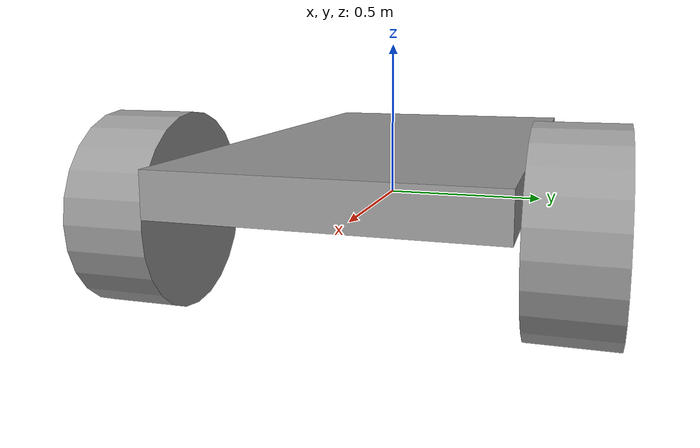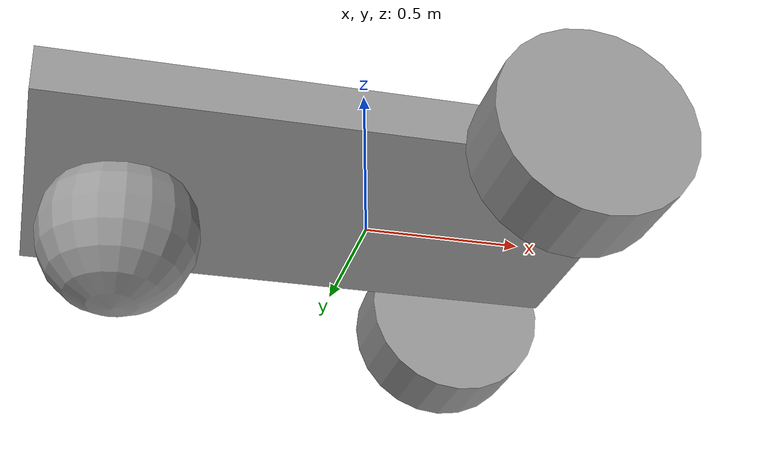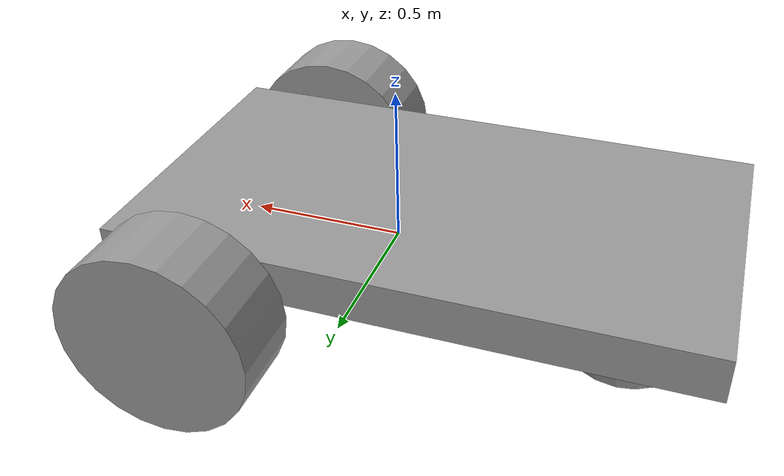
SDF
<?xml version='1.0'?>
<sdf version='1.6'>
  <model name='sernew'>
    <link name='link_0'>
      <inertial>
        <mass>0.25457</mass>
        <inertia>
          <ixx>0.0215985</ixx>
          <ixy>0</ixy>
          <ixz>0</ixz>
          <iyy>0.0705872</iyy>
          <iyz>0</iyz>
          <izz>0.091353</izz>
        </inertia>
        <pose frame=''>0 0 0 0 -0 0</pose>
      </inertial>
      <pose frame=''>-0.150504 -0.010345 0.100406 0 -0 0</pose>
      <gravity>1</gravity>
      <self_collide>0</self_collide>
      <kinematic>0</kinematic>
      <enable_wind>0</enable_wind>
      <visual name='visual'>
        <pose frame=''>0 0 0 0 -0 0</pose>
        <geometry>
          <box>
            <size>1.81872 0.999245 0.140088</size>
          </box>
        </geometry>
        <material>
          <lighting>1</lighting>
          <script>
            <uri>file://media/materials/scripts/gazebo.material</uri>
            <name>Gazebo/Grey</name>
          </script>
          <shader type='pixel'>
            <normal_map>__default__</normal_map>
          </shader>
          <emissive>0 0 0 1</emissive>
          <ambient>0.3 0.3 0.3 1</ambient>
          <diffuse>0.7 0.7 0.7 1</diffuse>
          <specular>0.01 0.01 0.01 1</specular>
        </material>
        <transparency>0</transparency>
        <cast_shadows>1</cast_shadows>
      </visual>
      <collision name='collision'>
        <laser_retro>0</laser_retro>
        <max_contacts>10</max_contacts>
        <pose frame=''>0 0 0 0 -0 0</pose>
        <geometry>
          <box>
            <size>1.81872 0.999245 0.140088</size>
          </box>
        </geometry>
        <surface>
          <friction>
            <ode>
              <mu>1</mu>
              <mu2>1</mu2>
              <fdir1>0 0 0</fdir1>
              <slip1>0</slip1>
              <slip2>0</slip2>
            </ode>
            <torsional>
              <coefficient>1</coefficient>
              <patch_radius>0</patch_radius>
              <surface_radius>0</surface_radius>
              <use_patch_radius>1</use_patch_radius>
              <ode>
                <slip>0</slip>
              </ode>
            </torsional>
          </friction>
          <bounce>
            <restitution_coefficient>0</restitution_coefficient>
            <threshold>1e+06</threshold>
          </bounce>
          <contact>
            <collide_without_contact>0</collide_without_contact>
            <collide_without_contact_bitmask>1</collide_without_contact_bitmask>
            <collide_bitmask>1</collide_bitmask>
            <ode>
              <soft_cfm>0</soft_cfm>
              <soft_erp>0.2</soft_erp>
              <kp>1e+13</kp>
              <kd>1</kd>
              <max_vel>0.01</max_vel>
              <min_depth>0</min_depth>
            </ode>
            <bullet>
              <split_impulse>1</split_impulse>
              <split_impulse_penetration_threshold>-0.01</split_impulse_penetration_threshold>
              <soft_cfm>0</soft_cfm>
              <soft_erp>0.2</soft_erp>
              <kp>1e+13</kp>
              <kd>1</kd>
            </bullet>
          </contact>
        </surface>
      </collision>
    </link>
    <link name='link_1'>
      <inertial>
        <mass>1</mass>
        <inertia>
          <ixx>0.145833</ixx>
          <ixy>0</ixy>
          <ixz>0</ixz>
          <iyy>0.145833</iyy>
          <iyz>0</iyz>
          <izz>0.125</izz>
        </inertia>
        <pose frame=''>0 0 0 0 -0 0</pose>
      </inertial>
      <pose frame=''>0.458852 0.629306 0.000406 1.5707 -0 0</pose>
      <gravity>1</gravity>
      <self_collide>0</self_collide>
      <kinematic>0</kinematic>
      <enable_wind>0</enable_wind>
      <visual name='visual'>
        <pose frame=''>0 0 0 0 -0 0</pose>
        <geometry>
          <cylinder>
            <radius>0.3</radius>
            <length>0.25</length>
          </cylinder>
        </geometry>
        <material>
          <lighting>1</lighting>
          <script>
            <uri>file://media/materials/scripts/gazebo.material</uri>
            <name>Gazebo/Grey</name>
          </script>
          <shader type='pixel'>
            <normal_map>__default__</normal_map>
          </shader>
          <ambient>0.3 0.3 0.3 1</ambient>
          <diffuse>0.7 0.7 0.7 1</diffuse>
          <specular>0.01 0.01 0.01 1</specular>
          <emissive>0 0 0 1</emissive>
        </material>
        <transparency>0</transparency>
        <cast_shadows>1</cast_shadows>
      </visual>
      <collision name='collision'>
        <laser_retro>0</laser_retro>
        <max_contacts>10</max_contacts>
        <pose frame=''>0 0 0 0 -0 0</pose>
        <geometry>
          <cylinder>
            <radius>0.3</radius>
            <length>0.25</length>
          </cylinder>
        </geometry>
        <surface>
          <friction>
            <ode>
              <mu>1</mu>
              <mu2>1</mu2>
              <fdir1>0 0 0</fdir1>
              <slip1>0</slip1>
              <slip2>0</slip2>
            </ode>
            <torsional>
              <coefficient>1</coefficient>
              <patch_radius>0</patch_radius>
              <surface_radius>0</surface_radius>
              <use_patch_radius>1</use_patch_radius>
              <ode>
                <slip>0</slip>
              </ode>
            </torsional>
          </friction>
          <bounce>
            <restitution_coefficient>0</restitution_coefficient>
            <threshold>1e+06</threshold>
          </bounce>
          <contact>
            <collide_without_contact>0</collide_without_contact>
            <collide_without_contact_bitmask>1</collide_without_contact_bitmask>
            <collide_bitmask>1</collide_bitmask>
            <ode>
              <soft_cfm>0</soft_cfm>
              <soft_erp>0.2</soft_erp>
              <kp>1e+13</kp>
              <kd>1</kd>
              <max_vel>0.01</max_vel>
              <min_depth>0</min_depth>
            </ode>
            <bullet>
              <split_impulse>1</split_impulse>
              <split_impulse_penetration_threshold>-0.01</split_impulse_penetration_threshold>
              <soft_cfm>0</soft_cfm>
              <soft_erp>0.2</soft_erp>
              <kp>1e+13</kp>
              <kd>1</kd>
            </bullet>
          </contact>
        </surface>
      </collision>
    </link>
    <link name='link_1_clone'>
      <inertial>
        <mass>1</mass>
        <inertia>
          <ixx>0.145833</ixx>
          <ixy>0</ixy>
          <ixz>0</ixz>
          <iyy>0.145833</iyy>
          <iyz>0</iyz>
          <izz>0.125</izz>
        </inertia>
        <pose frame=''>0 0 0 0 -0 0</pose>
      </inertial>
      <pose frame=''>0.458854 -0.634997 0.000406 1.5707 -0 0</pose>
      <gravity>1</gravity>
      <self_collide>0</self_collide>
      <kinematic>0</kinematic>
      <enable_wind>0</enable_wind>
      <visual name='visual'>
        <pose frame=''>0 0 0 0 -0 0</pose>
        <geometry>
          <cylinder>
            <radius>0.3</radius>
            <length>0.25</length>
          </cylinder>
        </geometry>
        <material>
          <lighting>1</lighting>
          <script>
            <uri>file://media/materials/scripts/gazebo.material</uri>
            <name>Gazebo/Grey</name>
          </script>
          <shader type='pixel'>
            <normal_map>__default__</normal_map>
          </shader>
          <ambient>0.3 0.3 0.3 1</ambient>
          <diffuse>0.7 0.7 0.7 1</diffuse>
          <specular>0.01 0.01 0.01 1</specular>
          <emissive>0 0 0 1</emissive>
        </material>
        <transparency>0</transparency>
        <cast_shadows>1</cast_shadows>
      </visual>
      <collision name='collision'>
        <laser_retro>0</laser_retro>
        <max_contacts>10</max_contacts>
        <pose frame=''>0 0 0 0 -0 0</pose>
        <geometry>
          <cylinder>
            <radius>0.3</radius>
            <length>0.25</length>
          </cylinder>
        </geometry>
        <surface>
          <friction>
            <ode>
              <mu>1</mu>
              <mu2>1</mu2>
              <fdir1>0 0 0</fdir1>
              <slip1>0</slip1>
              <slip2>0</slip2>
            </ode>
            <torsional>
              <coefficient>1</coefficient>
              <patch_radius>0</patch_radius>
              <surface_radius>0</surface_radius>
              <use_patch_radius>1</use_patch_radius>
              <ode>
                <slip>0</slip>
              </ode>
            </torsional>
          </friction>
          <bounce>
            <restitution_coefficient>0</restitution_coefficient>
            <threshold>1e+06</threshold>
          </bounce>
          <contact>
            <collide_without_contact>0</collide_without_contact>
            <collide_without_contact_bitmask>1</collide_without_contact_bitmask>
            <collide_bitmask>1</collide_bitmask>
            <ode>
              <soft_cfm>0</soft_cfm>
              <soft_erp>0.2</soft_erp>
              <kp>1e+13</kp>
              <kd>1</kd>
              <max_vel>0.01</max_vel>
              <min_depth>0</min_depth>
            </ode>
            <bullet>
              <split_impulse>1</split_impulse>
              <split_impulse_penetration_threshold>-0.01</split_impulse_penetration_threshold>
              <soft_cfm>0</soft_cfm>
              <soft_erp>0.2</soft_erp>
              <kp>1e+13</kp>
              <kd>1</kd>
            </bullet>
          </contact>
        </surface>
      </collision>
    </link>
    <link name='link_2'>
      <inertial>
        <mass>1</mass>
        <inertia>
          <ixx>0.1</ixx>
          <ixy>0</ixy>
          <ixz>0</ixz>
          <iyy>0.1</iyy>
          <iyz>0</iyz>
          <izz>0.1</izz>
        </inertia>
        <pose frame=''>0 0 0 0 -0 0</pose>
      </inertial>
      <pose frame=''>-0.767199 0.016033 -0.101217 -0.02 0 0</pose>
      <gravity>1</gravity>
      <self_collide>0</self_collide>
      <kinematic>0</kinematic>
      <enable_wind>0</enable_wind>
      <visual name='visual'>
        <pose frame=''>0 0 0 0 -0 0</pose>
        <geometry>
          <sphere>
            <radius>0.25</radius>
          </sphere>
        </geometry>
        <material>
          <lighting>1</lighting>
          <script>
            <uri>file://media/materials/scripts/gazebo.material</uri>
            <name>Gazebo/Grey</name>
          </script>
          <shader type='pixel'>
            <normal_map>__default__</normal_map>
          </shader>
          <ambient>0.3 0.3 0.3 1</ambient>
          <diffuse>0.7 0.7 0.7 1</diffuse>
          <specular>0.01 0.01 0.01 1</specular>
          <emissive>0 0 0 1</emissive>
        </material>
        <transparency>0</transparency>
        <cast_shadows>1</cast_shadows>
      </visual>
      <collision name='collision'>
        <laser_retro>0</laser_retro>
        <max_contacts>10</max_contacts>
        <pose frame=''>0 0 0 0 -0 0</pose>
        <geometry>
          <sphere>
            <radius>0.25</radius>
          </sphere>
        </geometry>
        <surface>
          <friction>
            <ode>
              <mu>1</mu>
              <mu2>1</mu2>
              <fdir1>0 0 0</fdir1>
              <slip1>0</slip1>
              <slip2>0</slip2>
            </ode>
            <torsional>
              <coefficient>1</coefficient>
              <patch_radius>0</patch_radius>
              <surface_radius>0</surface_radius>
              <use_patch_radius>1</use_patch_radius>
              <ode>
                <slip>0</slip>
              </ode>
            </torsional>
          </friction>
          <bounce>
            <restitution_coefficient>0</restitution_coefficient>
            <threshold>1e+06</threshold>
          </bounce>
          <contact>
            <collide_without_contact>0</collide_without_contact>
            <collide_without_contact_bitmask>1</collide_without_contact_bitmask>
            <collide_bitmask>1</collide_bitmask>
            <ode>
              <soft_cfm>0</soft_cfm>
              <soft_erp>0.2</soft_erp>
              <kp>1e+13</kp>
              <kd>1</kd>
              <max_vel>0.01</max_vel>
              <min_depth>0</min_depth>
            </ode>
            <bullet>
              <split_impulse>1</split_impulse>
              <split_impulse_penetration_threshold>-0.01</split_impulse_penetration_threshold>
              <soft_cfm>0</soft_cfm>
              <soft_erp>0.2</soft_erp>
              <kp>1e+13</kp>
              <kd>1</kd>
            </bullet>
          </contact>
        </surface>
      </collision>
    </link>
    <joint name='link_0_JOINT_0' type='revolute'>
      <parent>link_0</parent>
      <child>link_1</child>
      <pose frame=''>0 0 0 0 -0 0</pose>
      <axis>
        <xyz>-0 -0 -1</xyz>
        <use_parent_model_frame>0</use_parent_model_frame>
        <limit>
          <lower>-1.79769e+308</lower>
          <upper>1.79769e+308</upper>
          <effort>-1</effort>
          <velocity>-1</velocity>
        </limit>
        <dynamics>
          <spring_reference>0</spring_reference>
          <spring_stiffness>0</spring_stiffness>
          <damping>0</damping>
        </dynamics>
      </axis>
      <physics>
        <ode>
          <limit>
            <cfm>0</cfm>
            <erp>0.2</erp>
          </limit>
          <suspension>
            <cfm>0</cfm>
            <erp>0.2</erp>
          </suspension>
        </ode>
      </physics>
    </joint>
    <joint name='link_0_JOINT_1' type='revolute'>
      <parent>link_0</parent>
      <child>link_1_clone</child>
      <pose frame=''>0 0 0 0 -0 0</pose>
      <axis>
        <xyz>0 0 1</xyz>
        <use_parent_model_frame>0</use_parent_model_frame>
        <limit>
          <lower>-1.79769e+308</lower>
          <upper>1.79769e+308</upper>
          <effort>-1</effort>
          <velocity>-1</velocity>
        </limit>
        <dynamics>
          <spring_reference>0</spring_reference>
          <spring_stiffness>0</spring_stiffness>
          <damping>0</damping>
        </dynamics>
      </axis>
      <physics>
        <ode>
          <limit>
            <cfm>0</cfm>
            <erp>0.2</erp>
          </limit>
          <suspension>
            <cfm>0</cfm>
            <erp>0.2</erp>
          </suspension>
        </ode>
      </physics>
    </joint>
    <joint name='link_0_JOINT_2' type='ball'>
      <parent>link_0</parent>
      <child>link_2</child>
      <pose frame=''>0 0 0 0 -0 0</pose>
      <physics>
        <ode>
          <limit>
            <cfm>0</cfm>
            <erp>0.2</erp>
          </limit>
          <suspension>
            <cfm>0</cfm>
            <erp>0.2</erp>
          </suspension>
        </ode>
      </physics>
    </joint>
    <static>0</static>
    <allow_auto_disable>1</allow_auto_disable>
  </model>
</sdf>
